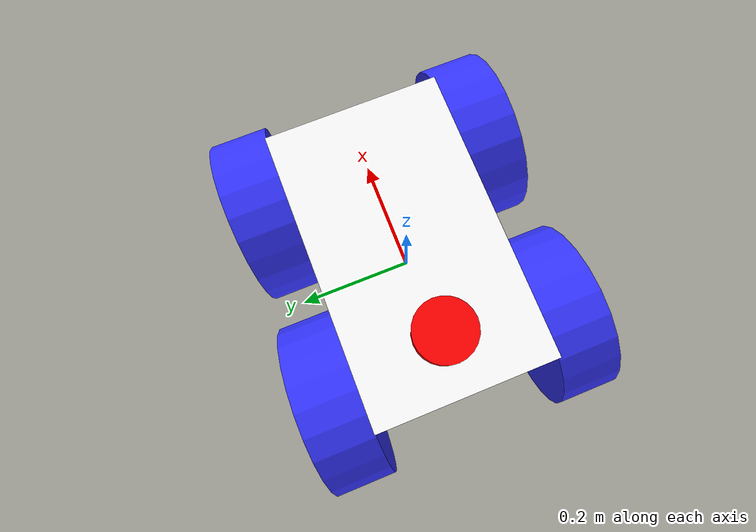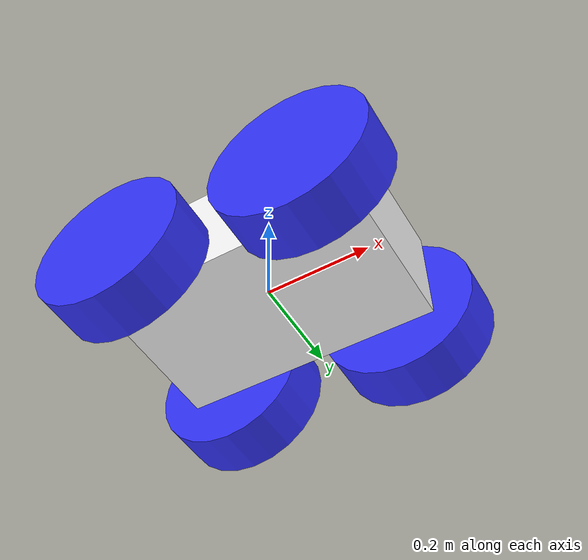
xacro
<?xml version="1.0"?>
<robot xmlns:xacro="http://www.ros.org/wiki/xacro"  name="robot">

    <xacro:include filename="skid.xacro"/>
    <xacro:include filename="lidar.xacro"/>
    <xacro:include filename="gazebo_control.xacro"/>
    <xacro:include filename="imu.xacro"/>
    <xacro:include filename="depth_camera.xacro"/>

</robot>

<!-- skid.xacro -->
<robot xmlns:xacro="http://www.ros.org/wiki/xacro"  name="robot">

    <xacro:include filename="inertial_macros.xacro"/>

    <material name="white">
        <color rgba="1 1 1 1" />
    </material>

    <material name="orange">
        <color rgba="1 0.3 0.1 1" />
    </material>

    <material name="blue">
        <color rgba="0.2 0.2 1 1" />
    </material>

    <material name="black">
        <color rgba="0 0 0 1" />
    </material>

    <material name="red">
        <color rgba="1 0 0 1" />
    </material>

    <!-- Example link -->
    <link name="base_link">
    </link>

    <!-- CHASSIS LINK-->
    <joint name="chassis_joint" type="fixed">
        <parent link= "base_link"/>
        <child link="chassis"/>
        <origin xyz="0 0 0"/>
    </joint>

    <link name="chassis">
        <visual>
            <origin xyz="0 0 0.05"/>
            <geometry>
                <box size="0.5 0.3 0.2"/>
            </geometry>
            <material name="white"/>
        </visual>
        <collision>
            <geometry>
                <box size="0.5 0.3 0.2"/>
            </geometry>
        </collision>
        <xacro:inertial_box mass="0.5" x="1.0" y="0.6" z="0.3">
            <origin xyz="0 0 0.05" rpy="0 0 0"/>
        </xacro:inertial_box>
    </link>

    <gazebo reference="chassis">
        <material>Gazebo/White</material>
    </gazebo>

    <!--FORWARD_LEFT LINK-->
    <joint name="fl_wheel_joint" type="continuous">
        <parent link="base_link"/>
        <child link="fl_wheel"/>
        <origin xyz="0.18 0.2 0" rpy="-${pi/2} 0 0"/>
        <axis xyz="0 0 1"/>
    </joint>

    <link name="fl_wheel">
        <visual>
            <geometry>
                <cylinder radius="0.15" length="0.1"/>
            </geometry>
            <material name="blue"/>
        </visual>
        <collision>
            <geometry>
                <cylinder radius="0.15" length="0.1"/>
            </geometry>
        </collision>
        <xacro:inertial_cylinder mass="0.1" length="0.1" radius="0.15">
            <origin xyz="0 0 0" rpy="0 0 0"/>
        </xacro:inertial_cylinder>
    </link>

    <gazebo reference="fl_wheel">
        <material>Gazebo/Blue</material>
    </gazebo>

    <!--FORWARD_RIGHT LINK-->
    <joint name="fr_wheel_joint" type="continuous">
        <parent link="base_link"/>
        <child link="fr_wheel"/>
        <origin xyz="0.18 -0.2 0" rpy="-${pi/2} 0 0"/>
        <axis xyz="0 0 1"/>
    </joint>

    <link name="fr_wheel">
        <visual>
            <geometry>
                <cylinder radius="0.15" length="0.1"/>
            </geometry>
            <material name="blue"/>
        </visual>
        <collision>
            <geometry>
                <cylinder radius="0.15" length="0.1"/>
            </geometry>
        </collision>
        <xacro:inertial_cylinder mass="0.1" length="0.1" radius="0.15">
            <origin xyz="0 0 0" rpy="0 0 0"/>
        </xacro:inertial_cylinder>
    </link>
    <gazebo reference="fr_wheel">
        <material>Gazebo/Blue</material>
    </gazebo>

    <!--BACK_LEFT LINK-->
    <joint name="bl_wheel_joint" type="continuous">
        <parent link="base_link"/>
        <child link="bl_wheel"/>
        <origin xyz="-0.18 0.2 0" rpy="-${pi/2} 0 0"/>
        <axis xyz="0 0 1"/>
    </joint>

    <link name="bl_wheel">
        <visual>
            <geometry>
                <cylinder radius="0.15" length="0.1"/>
            </geometry>
            <material name="blue"/>
        </visual>
        <collision>
            <geometry>
                <cylinder radius="0.15" length="0.1"/>
            </geometry>
        </collision>
        <xacro:inertial_cylinder mass="0.1" length="0.1" radius="0.15">
            <origin xyz="0 0 0" rpy="0 0 0"/>
        </xacro:inertial_cylinder>
    </link>
    <gazebo reference="bl_wheel">
        <material>Gazebo/Blue</material>
    </gazebo>

    <!--BACK_RIGHT LINK-->
    <joint name="br_wheel_joint" type="continuous">
        <parent link="base_link"/>
        <child link="br_wheel"/>
        <origin xyz="-0.18 -0.2 0" rpy="-${pi/2} 0 0"/>
        <axis xyz="0 0 1"/>
    </joint>

    <link name="br_wheel">
        <visual>
            <geometry>
                <cylinder radius="0.15" length="0.1"/>
            </geometry>
            <material name="blue"/>
        </visual>
        <collision>
            <geometry>
                <cylinder radius="0.15" length="0.1"/>
            </geometry>
        </collision>
        <xacro:inertial_cylinder mass="0.1" length="0.1" radius="0.15">
            <origin xyz="0 0 0" rpy="0 0 0"/>
        </xacro:inertial_cylinder>
    </link>
    <gazebo reference="br_wheel">
        <material>Gazebo/Blue</material>
    </gazebo>

</robot>

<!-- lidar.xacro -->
<robot xmlns:xacro="http://www.ros.org/wiki/xacro" >

    <joint name="laser_joint" type="fixed">
        <parent link="chassis"/>
        <child link="laser_frame"/>
        <origin xyz="-0.15 0 0.17" rpy="0 0 0"/>
    </joint>

    <link name="laser_frame">
        <visual>
            <geometry>
                <cylinder radius="0.05" length="0.05"/>
            </geometry>
            <material name="red"/>
        </visual>
        <collision>
            <geometry>
                <cylinder radius="0.05" length="0.05"/>
            </geometry>
        </collision>
        <xacro:inertial_cylinder mass="0.1" length="0.1" radius="0.15">
            <origin xyz="0 0 0" rpy="0 0 0"/>
        </xacro:inertial_cylinder>
    </link>

    <gazebo reference="laser_frame">
        <material>Gazebo/Red</material>
            <sensor type="ray" name="laser">
            <pose>0 0 0 0 0 0</pose>
            <visualize>true</visualize>
            <update_rate>10</update_rate>
            <ray>
                <scan>
                <horizontal>
                    <samples>360</samples>
                    <resolution>1</resolution>
                    <min_angle>-3.14</min_angle>
                    <max_angle>3.14</max_angle>
                </horizontal>
                </scan>
                <range>
                <min>0.10</min>
                <max>20.0</max>
                <resolution>0.01</resolution>
                </range>
                <noise>
                <type>gaussian</type>
                <mean>0.0</mean>
                <stddev>0.01</stddev>
                </noise>
            </ray>
            <plugin name="laser_controller" filename="libgazebo_ros_ray_sensor.so">
                <output_type>sensor_msgs/LaserScan</output_type>
                <ros>
                    <argument>~/out:=scan</argument>
                </ros>
                <frameName>laser_frame</frameName>
            </plugin>
        </sensor>
    </gazebo>

</robot>

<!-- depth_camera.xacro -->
<robot xmlns:xacro="http://www.ros.org/wiki/xacro"  >

    <joint name="camera_joint" type="fixed">
        <parent link="base_link"/>
        <child link="camera_link"/>
        <origin xyz="0.22 0 0.1" rpy="0 0 0"/>
    </joint>

    <link name="camera_link">
        <visual>
            <geometry>
                <box size="0.02 0.08 0.03"/>
            </geometry>
            <material name="red"/>
        </visual>
    </link>

    <joint name="camera_optical_joint" type="fixed">
        <parent link="camera_link"/>
        <child link="camera_optical_link"/>
        <origin xyz="0 0 0" rpy="${-pi/2} 0 ${-pi/2}"/>
    </joint>

    <link name="camera_optical_link"></link>

    <gazebo reference="camera_link">
        <material>Gazebo/red</material>
            <sensor type="depth" name="camera">
            <pose>0 0 0 0 0 0</pose>
            <update_rate>10.0</update_rate>
            <camera>
                <horizontal_fov>1.089</horizontal_fov>
                <image>
                    <width>640</width>
                    <height>480</height>
                    <format>B8G8R8</format>
                </image>
                <clip>
                    <near>0.05</near>
                    <far>8.0</far>
                </clip>
            </camera>
            <plugin name="camera_controller" filename="libgazebo_ros_camera.so">
                <frameName>camera_link</frameName>
                <min_depth>0.1</min_depth>
                <max_depth>100.0</max_depth>
            </plugin>
            </sensor>
  </gazebo>

</robot>
